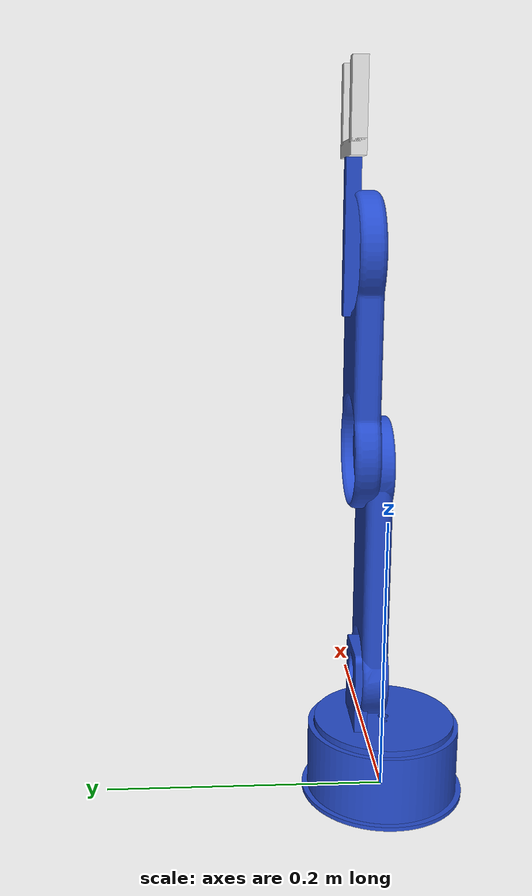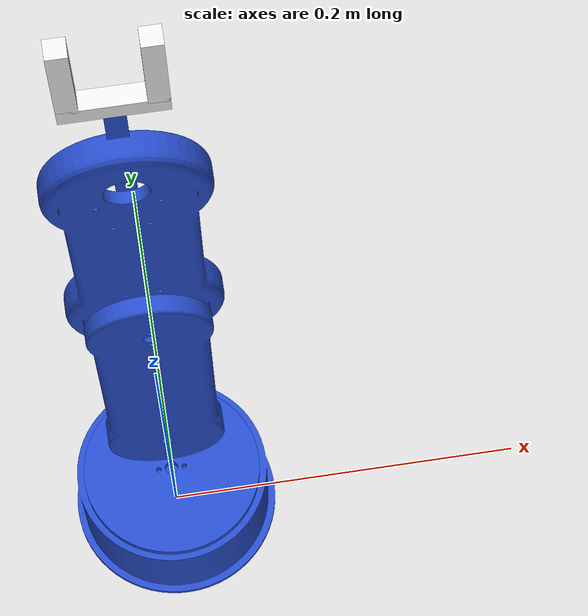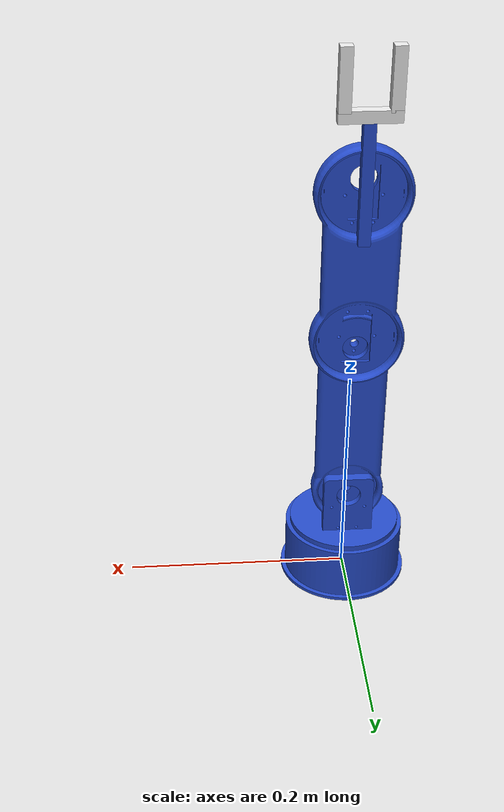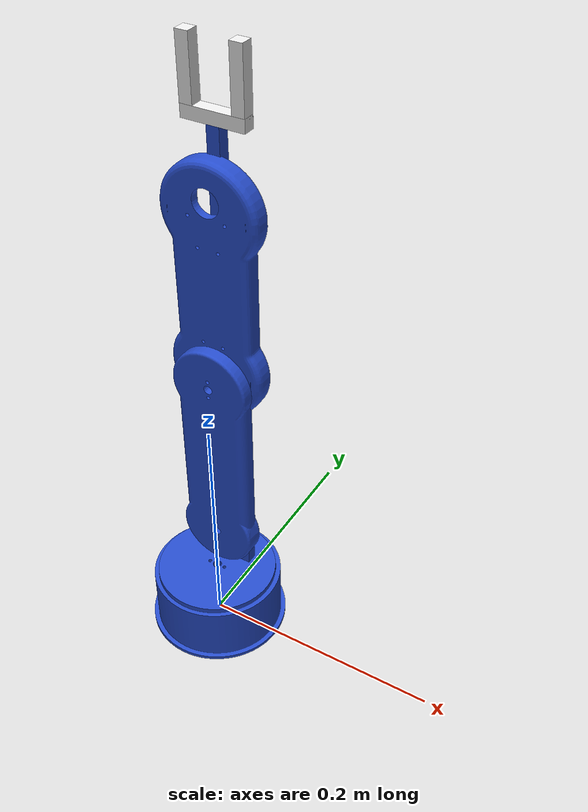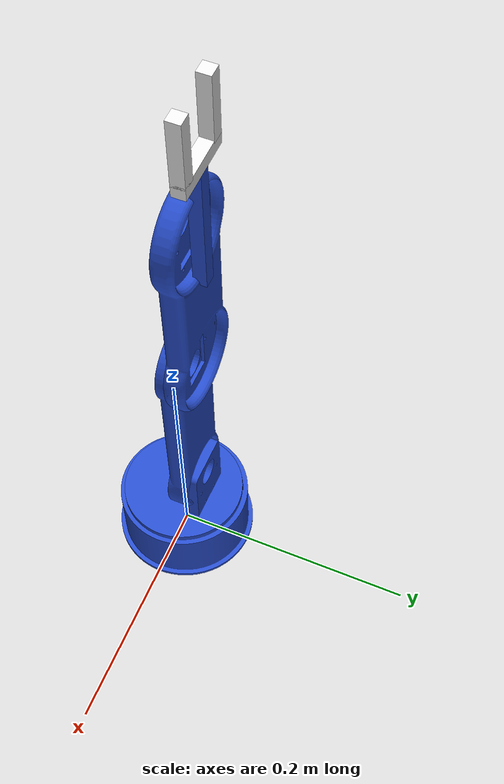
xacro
<?xml version="1.0"?>

<robot name="hexbot" xmlns:xacro="http://ros.org/wiki/xacro">

    <!-- body of the bot -->
  <link name="base_arm">
    <pose>0 0 0 0 0 0</pose>
    <inertial>
      <mass value="0.01"/>
      <origin rpy="0 0 0" xyz="0 0 0"/>
      <inertia ixx="0.0395416666667" ixy="0" ixz="0" iyy="0.106208333333" iyz="0" izz="0.106208333333"/>
    </inertial>
    <collision name="c">
      <origin rpy="0 0 0" xyz="0 0 0"/>
      <geometry>
        <mesh filename="package://hexbot/meshes/base.dae" scale="0.1 0.1 0.1"/>
      </geometry>
    </collision>
    <visual>
      <origin rpy="0 0 0" xyz="0 0 0"/>
      <geometry>
        <mesh filename="package://hexbot/meshes/base.dae" scale="0.1 0.1 0.1"/>
      </geometry>
      <material name="blue"/>
    </visual>
  </link>

  <link name="base_top">
    <pose>0 0 0 0 0 0</pose>
    <inertial>
      <mass value="0.01"/>
      <origin rpy="0 0 0" xyz="0 0 0"/>
      <inertia ixx="0.0395416666667" ixy="0" ixz="0" iyy="0.106208333333" iyz="0" izz="0.106208333333"/>
    </inertial>
    <collision name="ca">
      <origin rpy="0 0 0" xyz="0 0 0"/>
      <geometry>
        <mesh filename="package://hexbot/meshes/base_top.dae" scale="0.1 0.1 0.1"/>
      </geometry>
    </collision>
    <visual>
      <origin rpy="0 0 0" xyz="0 0 0"/>
      <geometry>
        <mesh filename="package://hexbot/meshes/base_top.dae" scale="0.1 0.1 0.1"/>
      </geometry>
      <material name="blue"/>
    </visual>
  </link>

  <joint name="joint_base_top" type="continuous">
    <origin rpy="0 0 0" xyz="0 0 0.048"/>
    <parent link="base_arm"/>
    <child link="base_top"/>
    <axis xyz="0 0 0.048"/>
    <limit effort="87" lower="-3.14" upper="3.14" velocity="2.3925" />
  </joint>

    <link name="arm_lower">
    <pose>0 0 0 0 0 0</pose>
    <inertial>
      <mass value="0.01"/>
      <origin rpy="0 0 0" xyz="0 0 0"/>
      <inertia ixx="0.0395416666667" ixy="0" ixz="0" iyy="0.106208333333" iyz="0" izz="0.106208333333"/>
    </inertial>
    <collision name="ca">
      <origin rpy="0 0 0" xyz="0 0 0"/>
      <geometry>
        <mesh filename="package://hexbot/meshes/lower_arm.dae" scale="0.1 0.1 0.1"/>
      </geometry>
    </collision>
    <visual>
      <origin rpy="0 0 0" xyz="0 0 0"/>
      <geometry>
        <mesh filename="package://hexbot/meshes/lower_arm.dae" scale="0.1 0.1 0.1"/>
      </geometry>
      <material name="blue"/>
    </visual>
  </link>

  <joint name="joint_arm_lower" type="revolute">
    <origin rpy="0 0 0" xyz="0 0.01 0.045"/>
    <parent link="base_top"/>
    <child link="arm_lower"/>
    <axis xyz="0 0.048 0"/>
    <limit effort="87" lower="-1.4" upper="1.7" velocity="2.3925" />
  </joint>

  <link name="arm_upper">
    <pose>0 0 0 0 0 0</pose>
    <inertial>
      <mass value="0.01"/>
      <origin rpy="0 0 0" xyz="0 0 0"/>
      <inertia ixx="0.0395416666667" ixy="0" ixz="0" iyy="0.106208333333" iyz="0" izz="0.106208333333"/>
    </inertial>
    <collision name="caf">
      <origin rpy="0 0 0" xyz="0 0 0"/>
      <geometry>
        <mesh filename="package://hexbot/meshes/upper_arm.dae" scale="0.1 0.1 0.1"/>
      </geometry>
    </collision>
    <visual>
      <origin rpy="0 0 0" xyz="0 0 0"/>
      <geometry>
        <mesh filename="package://hexbot/meshes/upper_arm.dae" scale="0.1 0.1 0.1"/>
      </geometry>
      <material name="blue"/>
    </visual>
  </link>

  <joint name="joint_arm_upper" type="revolute">
    <origin rpy="0 0 0" xyz="0 0.01 0.15"/>
    <parent link="arm_lower"/>
    <child link="arm_upper"/>
    <axis xyz="0 0.048 0"/>
    <limit effort="87" lower="-2.3" upper="2.3" velocity="2.3925" />
  </joint>

  <link name="lastlink">
    <pose>0 0 0 0 0 0</pose>
    <inertial>
      <mass value="0.01"/>
      <origin rpy="0 0 0" xyz="0 0 0"/>
      <inertia ixx="0.0395416666667" ixy="0" ixz="0" iyy="0.106208333333" iyz="0" izz="0.106208333333"/>
    </inertial>
    <collision name="caf">
      <origin rpy="0 0 0" xyz="0 0 0"/>
      <geometry>
         <box size="0.01 0.1 0.01"/>
      </geometry>
    </collision>
    <visual>
      <origin rpy="0 0 0" xyz="0 0 0"/>
      <geometry>
         <box size="0.01 0.10 0.01"/>
      </geometry>
      <material name="blue"/>
    </visual>
  </link>

  <joint name="joint_lastlink" type="revolute">
    <origin rpy="1.5707 0 0" xyz="0 0.01 0.15"/>
    <parent link="arm_upper"/>
    <child link="lastlink"/>
    <axis xyz="0 0 -0.05"/>
    <limit effort="87" lower="-2.3" upper="2.3" velocity="2.3925" />
  </joint>

  <link name="hand">
    <inertial>
      <origin rpy="0 0 0" xyz="0 0 0"/>
      <mass value="1"/>
      <inertia ixx="0.0010417" ixy="0" ixz="0" iyy="0.00028333" iyz="0" izz="0.0009083"/>
    </inertial>
    <visual>
      <origin rpy="0 0 0" xyz="0 0 0"/>
      <geometry>
        <box size="0.05 0.01 0.01"/>
      </geometry>
      <material name="white"/>
    </visual>
    <collision>
      <origin rpy="0 0 0" xyz="0 0 0"/>
      <geometry>
        <box size="0.03 0.03 0.02"/>
      </geometry>
    </collision>
  </link>
  <joint name="hand_toup" type="fixed">
    <origin rpy="0 0 0" xyz="0 0.055 0"/>
    <parent link="lastlink"/>
    <child link="hand"/>
  </joint>

    <link name="fingerleft">
    <inertial>
      <origin rpy="0 0 0" xyz="0 0 0"/>
      <mass value="1"/>
      <inertia ixx="0.0010417" ixy="0" ixz="0" iyy="0.00028333" iyz="0" izz="0.0009083"/>
    </inertial>
    <visual>
      <origin rpy="0 0 0" xyz="0 0 0"/>
      <geometry>
        <box size="0.01 0.05 0.01"/>
      </geometry>
      <material name="white"/>
    </visual>
    <collision>
      <origin rpy="0 0 0" xyz="0 0 0"/>
      <geometry>
        <box size="0.03 0.03 0.02"/>
      </geometry>
      <surface>
        <friction>
          <ode>
            <mu>0.1</mu>
            <mu2>0.1</mu2>
          </ode>
        </friction>
      </surface>
    </collision>
  </link>

  <joint name="fing_tohand" type="prismatic">
    <origin rpy="0 0 0" xyz="-0.02 0.028 0"/>
    <parent link="hand"/>
    <child link="fingerleft"/>
    <limit effort="20" lower="0.0" upper="0.04" velocity="0.2" />
  </joint>

    <link name="fingerright">
    <inertial>
      <origin rpy="0 0 0" xyz="0 0 0"/>
      <mass value="1"/>
      <inertia ixx="0.0010417" ixy="0" ixz="0" iyy="0.00028333" iyz="0" izz="0.0009083"/>
    </inertial>
    <visual>
      <origin rpy="0 0 0" xyz="0 0 0"/>
      <geometry>
        <box size="0.01 0.05 0.01"/>
      </geometry>
      <material name="white"/>
    </visual>
    <collision>
      <origin rpy="0 0 0" xyz="0 0 0"/>
      <geometry>
        <box size="0.03 0.03 0.02"/>
      </geometry>
      <surface>
        <friction>
          <ode>
            <mu>0.1</mu>
            <mu2>0.1</mu2>
          </ode>
        </friction>
      </surface>
    </collision>
  </link>
  <joint name="fingr_tohand" type="prismatic">
    <origin rpy="0 0 0" xyz="0.02 0.028 0"/>
    <parent link="hand"/>
    <child link="fingerright"/>
    <limit effort="20" lower="-0.04" upper="0.0" velocity="0.2" />
  </joint>

</robot>
